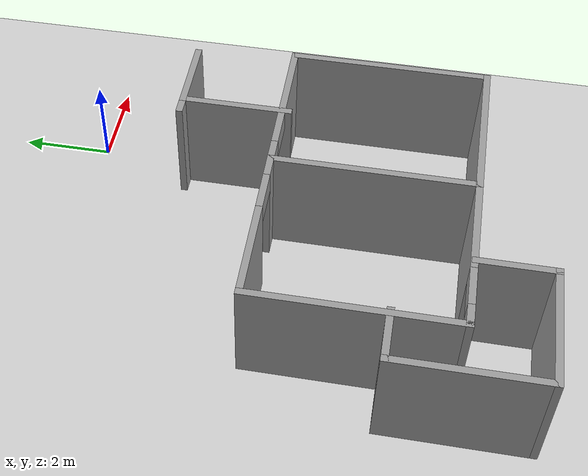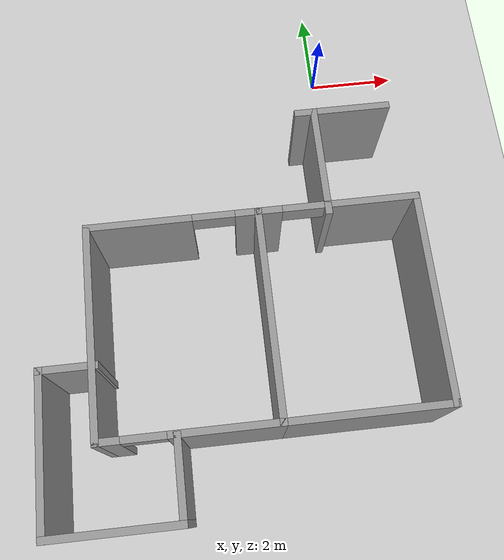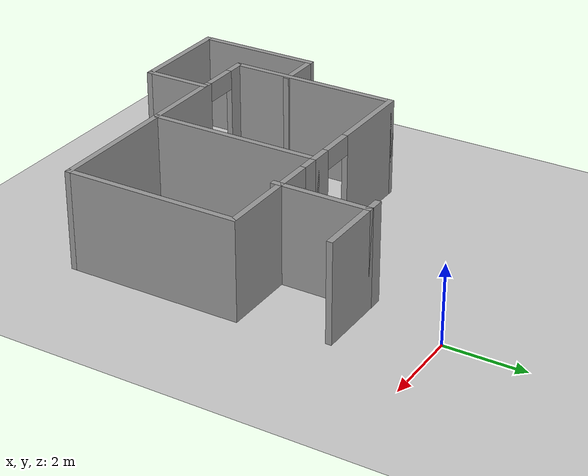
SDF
<sdf version="1.9">
 <world name="default">
  <model name="ground_plane">
   <static>true</static>
   <link name="link">
    <collision name="collision">
     <geometry><plane><normal>0 0 1</normal><size>100 100</size></plane></geometry>
     <surface><friction><ode><mu>100</mu><mu2>50</mu2></ode></friction></surface>
    </collision>
    <visual name="visual">
     <cast_shadows>false</cast_shadows>
     <geometry><plane><normal>0 0 1</normal><size>100 100</size></plane></geometry>
     <material>
      <script><uri>file://media/materials/scripts/gazebo.material</uri><name>Gazebo/Grey</name></script>
     </material>
    </visual>
   </link>
  </model>
  <model name="cma_quartos">
   <pose>-2.58169 -7.2645600000000004 0 0 0 0</pose>
   <link name="Wall_0">
    <collision name="Wall_0_Collision">
     <geometry><box><size>4.5 0.14999999999999999 2.5</size></box></geometry>
     <pose>0 0 1.25 0 0 0</pose>
    </collision>
    <visual name="Wall_0_Visual">
     <pose>0 0 1.25 0 0 0</pose>
     <geometry><box><size>4.5 0.14999999999999999 2.5</size></box></geometry>
     <material>
      <script><uri>file://media/materials/scripts/gazebo.material</uri><name>Gazebo/Grey</name></script>
      <ambient>1 1 1 1</ambient>
     </material>
    </visual>
    <pose>0.64500000000000002 0.81000000000000005 0 0 0 -1.5708</pose>
   </link>
   <link name="Wall_1">
    <pose>-1.155 -1.365 0 0 0 3.1415899999999999</pose>
    <visual name="Wall_1_Visual_0">
     <pose>-0.72250000000000003 0 1.25 0 0 0</pose>
     <geometry><box><size>2.3050000000000002 0.14999999999999999 2.5</size></box></geometry>
     <material>
      <script><uri>file://media/materials/scripts/gazebo.material</uri><name>Gazebo/Grey</name></script>
      <ambient>1 1 1 1</ambient>
     </material>
    </visual>
    <collision name="Wall_1_Collision_0">
     <geometry><box><size>2.3050000000000002 0.14999999999999999 2.5</size></box></geometry>
     <pose>-0.72250000000000003 0 1.25 0 0 0</pose>
    </collision>
    <visual name="Wall_1_Visual_1">
     <pose>1.6025 0 1.25 0 0 0</pose>
     <geometry><box><size>0.54500000000000004 0.14999999999999999 2.5</size></box></geometry>
     <material>
      <script><uri>file://media/materials/scripts/gazebo.material</uri><name>Gazebo/Grey</name></script>
      <ambient>1 1 1 1</ambient>
     </material>
    </visual>
    <collision name="Wall_1_Collision_1">
     <geometry><box><size>0.54500000000000004 0.14999999999999999 2.5</size></box></geometry>
     <pose>1.6025 0 1.25 0 0 0</pose>
    </collision>
    <visual name="Wall_1_Visual_2">
     <pose>0.88 0 2.25 0 0 0</pose>
     <geometry><box><size>0.90000000000000002 0.14999999999999999 0.5</size></box></geometry>
     <material>
      <script><uri>file://media/materials/scripts/gazebo.material</uri><name>Gazebo/Grey</name></script>
      <ambient>1 1 1 1</ambient>
     </material>
    </visual>
    <collision name="Wall_1_Collision_2">
     <geometry><box><size>0.90000000000000002 0.14999999999999999 0.5</size></box></geometry>
     <pose>0.88 0 2.25 0 0 0</pose>
    </collision>
   </link>
   <link name="Wall_10">
    <collision name="Wall_10_Collision">
     <geometry><box><size>1.75 0.14999999999999999 2.5</size></box></geometry>
     <pose>0 0 1.25 0 0 0</pose>
    </collision>
    <visual name="Wall_10_Visual">
     <pose>0 0 1.25 0 0 0</pose>
     <geometry><box><size>1.75 0.14999999999999999 2.5</size></box></geometry>
     <material>
      <script><uri>file://media/materials/scripts/gazebo.material</uri><name>Gazebo/Grey</name></script>
      <ambient>1 1 1 1</ambient>
     </material>
    </visual>
    <pose>-1.395 -2.1850000000000001 0 0 0 -1.5708</pose>
   </link>
   <link name="Wall_11">
    <collision name="Wall_11_Collision">
     <geometry><box><size>2.75 0.14999999999999999 2.5</size></box></geometry>
     <pose>0 0 1.25 0 0 0</pose>
    </collision>
    <visual name="Wall_11_Visual">
     <pose>0 0 1.25 0 0 0</pose>
     <geometry><box><size>2.75 0.14999999999999999 2.5</size></box></geometry>
     <material>
      <script><uri>file://media/materials/scripts/gazebo.material</uri><name>Gazebo/Grey</name></script>
      <ambient>1 1 1 1</ambient>
     </material>
    </visual>
    <pose>-2.6949999999999998 -2.9849999999999999 0 0 0 3.1415899999999999</pose>
   </link>
   <link name="Wall_12">
    <collision name="Wall_12_Collision">
     <geometry><box><size>3.25 0.14999999999999999 2.5</size></box></geometry>
     <pose>0 0 1.25 0 0 0</pose>
    </collision>
    <visual name="Wall_12_Visual">
     <pose>0 0 1.25 0 0 0</pose>
     <geometry><box><size>3.25 0.14999999999999999 2.5</size></box></geometry>
     <material>
      <script><uri>file://media/materials/scripts/gazebo.material</uri><name>Gazebo/Grey</name></script>
      <ambient>1 1 1 1</ambient>
     </material>
    </visual>
    <pose>-3.9950000000000001 -1.4350000000000001 0 0 0 1.5708</pose>
   </link>
   <link name="Wall_13">
    <collision name="Wall_13_Collision">
     <geometry><box><size>1.25 0.14999999999999999 2.5</size></box></geometry>
     <pose>0 0 1.25 0 0 0</pose>
    </collision>
    <visual name="Wall_13_Visual">
     <pose>0 0 1.25 0 0 0</pose>
     <geometry><box><size>1.25 0.14999999999999999 2.5</size></box></geometry>
     <material>
      <script><uri>file://media/materials/scripts/gazebo.material</uri><name>Gazebo/Grey</name></script>
      <ambient>1 1 1 1</ambient>
     </material>
    </visual>
    <pose>-3.4449999999999998 0.115 0 0 0 0</pose>
   </link>
   <link name="Wall_2">
    <collision name="Wall_2_Collision">
     <geometry><box><size>4.5 0.14999999999999999 2.5</size></box></geometry>
     <pose>0 0 1.25 0 0 0</pose>
    </collision>
    <visual name="Wall_2_Visual">
     <pose>0 0 1.25 0 0 0</pose>
     <geometry><box><size>4.5 0.14999999999999999 2.5</size></box></geometry>
     <material>
      <script><uri>file://media/materials/scripts/gazebo.material</uri><name>Gazebo/Grey</name></script>
      <ambient>1 1 1 1</ambient>
     </material>
    </visual>
    <pose>-2.9550000000000001 0.81000000000000005 0 0 0 1.5708</pose>
   </link>
   <link name="Wall_3">
    <pose>-1.155 2.9849999999999999 0 0 0 0</pose>
    <visual name="Wall_3_Visual_0">
     <pose>-0.73250000000000004 0 1.25 0 0 0</pose>
     <geometry><box><size>2.2850000000000001 0.14999999999999999 2.5</size></box></geometry>
     <material>
      <script><uri>file://media/materials/scripts/gazebo.material</uri><name>Gazebo/Grey</name></script>
      <ambient>1 1 1 1</ambient>
     </material>
    </visual>
    <collision name="Wall_3_Collision_0">
     <geometry><box><size>2.2850000000000001 0.14999999999999999 2.5</size></box></geometry>
     <pose>-0.73250000000000004 0 1.25 0 0 0</pose>
    </collision>
    <visual name="Wall_3_Visual_1">
     <pose>1.5925 0 1.25 0 0 0</pose>
     <geometry><box><size>0.56499999999999995 0.14999999999999999 2.5</size></box></geometry>
     <material>
      <script><uri>file://media/materials/scripts/gazebo.material</uri><name>Gazebo/Grey</name></script>
      <ambient>1 1 1 1</ambient>
     </material>
    </visual>
    <collision name="Wall_3_Collision_1">
     <geometry><box><size>0.56499999999999995 0.14999999999999999 2.5</size></box></geometry>
     <pose>1.5925 0 1.25 0 0 0</pose>
    </collision>
    <visual name="Wall_3_Visual_2">
     <pose>0.85999999999999999 0 2.25 0 0 0</pose>
     <geometry><box><size>0.90000000000000002 0.14999999999999999 0.5</size></box></geometry>
     <material>
      <script><uri>file://media/materials/scripts/gazebo.material</uri><name>Gazebo/Grey</name></script>
      <ambient>1 1 1 1</ambient>
     </material>
    </visual>
    <collision name="Wall_3_Collision_2">
     <geometry><box><size>0.90000000000000002 0.14999999999999999 0.5</size></box></geometry>
     <pose>0.85999999999999999 0 2.25 0 0 0</pose>
    </collision>
   </link>
   <link name="Wall_6">
    <pose>2.3199999999999998 2.9849999999999999 0 0 0 0</pose>
    <visual name="Wall_6_Visual_0">
     <pose>-1.4575 0 1.25 0 0 0</pose>
     <geometry><box><size>0.58499999999999996 0.14999999999999999 2.5</size></box></geometry>
     <material>
      <script><uri>file://media/materials/scripts/gazebo.material</uri><name>Gazebo/Grey</name></script>
      <ambient>1 1 1 1</ambient>
     </material>
    </visual>
    <collision name="Wall_6_Collision_0">
     <geometry><box><size>0.58499999999999996 0.14999999999999999 2.5</size></box></geometry>
     <pose>-1.4575 0 1.25 0 0 0</pose>
    </collision>
    <visual name="Wall_6_Visual_1">
     <pose>0.74250000000000005 0 1.25 0 0 0</pose>
     <geometry><box><size>2.0150000000000001 0.14999999999999999 2.5</size></box></geometry>
     <material>
      <script><uri>file://media/materials/scripts/gazebo.material</uri><name>Gazebo/Grey</name></script>
      <ambient>1 1 1 1</ambient>
     </material>
    </visual>
    <collision name="Wall_6_Collision_1">
     <geometry><box><size>2.0150000000000001 0.14999999999999999 2.5</size></box></geometry>
     <pose>0.74250000000000005 0 1.25 0 0 0</pose>
    </collision>
    <visual name="Wall_6_Visual_2">
     <pose>-0.71499999999999997 0 2.25 0 0 0</pose>
     <geometry><box><size>0.90000000000000002 0.14999999999999999 0.5</size></box></geometry>
     <material>
      <script><uri>file://media/materials/scripts/gazebo.material</uri><name>Gazebo/Grey</name></script>
      <ambient>1 1 1 1</ambient>
     </material>
    </visual>
    <collision name="Wall_6_Collision_2">
     <geometry><box><size>0.90000000000000002 0.14999999999999999 0.5</size></box></geometry>
     <pose>-0.71499999999999997 0 2.25 0 0 0</pose>
    </collision>
   </link>
   <link name="Wall_7">
    <collision name="Wall_7_Collision">
     <geometry><box><size>4.5 0.14999999999999999 2.5</size></box></geometry>
     <pose>0 0 1.25 0 0 0</pose>
    </collision>
    <visual name="Wall_7_Visual">
     <pose>0 0 1.25 0 0 0</pose>
     <geometry><box><size>4.5 0.14999999999999999 2.5</size></box></geometry>
     <material>
      <script><uri>file://media/materials/scripts/gazebo.material</uri><name>Gazebo/Grey</name></script>
      <ambient>1 1 1 1</ambient>
     </material>
    </visual>
    <pose>3.9950000000000001 0.81000000000000005 0 0 0 -1.5708</pose>
   </link>
   <link name="Wall_8">
    <collision name="Wall_8_Collision">
     <geometry><box><size>3.5 0.14999999999999999 2.5</size></box></geometry>
     <pose>0 0 1.25 0 0 0</pose>
    </collision>
    <visual name="Wall_8_Visual">
     <pose>0 0 1.25 0 0 0</pose>
     <geometry><box><size>3.5 0.14999999999999999 2.5</size></box></geometry>
     <material>
      <script><uri>file://media/materials/scripts/gazebo.material</uri><name>Gazebo/Grey</name></script>
      <ambient>1 1 1 1</ambient>
     </material>
    </visual>
    <pose>2.3199999999999998 -1.365 0 0 0 3.1415899999999999</pose>
   </link>
   <static>true</static>
  </model>
  <model name="cma_parede_t">
   <pose>0.16403899999999999 -3.2482899999999999 0 0 0 0</pose>
   <link name="Wall_15">
    <collision name="Wall_15_Collision">
     <geometry><box><size>2.5 0.14999999999999999 2.5</size></box></geometry>
     <pose>0 0 1.25 0 0 0</pose>
    </collision>
    <visual name="Wall_15_Visual">
     <pose>0 0 1.25 0 0 0</pose>
     <geometry><box><size>2.5 0.14999999999999999 2.5</size></box></geometry>
     <material>
      <script><uri>file://media/materials/scripts/gazebo.material</uri><name>Gazebo/Grey</name></script>
      <ambient>1 1 1 1</ambient>
     </material>
    </visual>
    <pose>-0.625 0 0 0 0 1.5708</pose>
   </link>
   <link name="Wall_16">
    <collision name="Wall_16_Collision">
     <geometry><box><size>0.5 0.14999999999999999 2.5</size></box></geometry>
     <pose>0 0 1.25 0 0 0</pose>
    </collision>
    <visual name="Wall_16_Visual">
     <pose>0 0 1.25 0 0 0</pose>
     <geometry><box><size>0.5 0.14999999999999999 2.5</size></box></geometry>
     <material>
      <script><uri>file://media/materials/scripts/gazebo.material</uri><name>Gazebo/Grey</name></script>
      <ambient>1 1 1 1</ambient>
     </material>
    </visual>
    <pose>-0.80000000000000004 1.175 0 0 0 3.1415899999999999</pose>
   </link>
   <link name="Wall_18">
    <collision name="Wall_18_Collision">
     <geometry><box><size>1.75 0.14999999999999999 2.5</size></box></geometry>
     <pose>0 0 1.25 0 0 0</pose>
    </collision>
    <visual name="Wall_18_Visual">
     <pose>0 0 1.25 0 0 0</pose>
     <geometry><box><size>1.75 0.14999999999999999 2.5</size></box></geometry>
     <material>
      <script><uri>file://media/materials/scripts/gazebo.material</uri><name>Gazebo/Grey</name></script>
      <ambient>1 1 1 1</ambient>
     </material>
    </visual>
    <pose>0.17499999999999999 1.175 0 0 0 0</pose>
   </link>
   <static>true</static>
  </model>
 </world>
</sdf>
